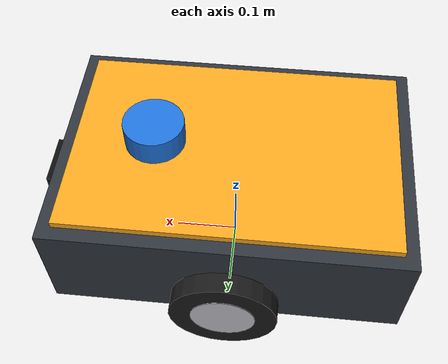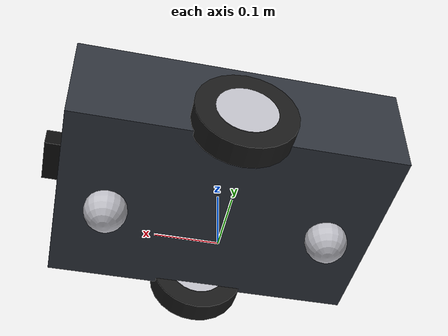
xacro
<?xml version="1.0"?>
<robot name="warehouse_robot" xmlns:xacro="http://www.ros.org/wiki/xacro">

  <!-- Materials -->
  <xacro:include filename="$(find warehouse_robot_description)/urdf/materials.xacro" />

  <!-- Geometric & Physical Constants -->
  <xacro:property name="chassis_length" value="0.52" />
  <xacro:property name="chassis_width"  value="0.36" />
  <xacro:property name="chassis_height" value="0.16" />
  <xacro:property name="chassis_mass"   value="12.0" />

  <xacro:property name="wheel_radius"   value="0.08" />
  <xacro:property name="wheel_width"    value="0.04" />
  <xacro:property name="wheel_track"    value="0.38" />
  <xacro:property name="wheel_mass"     value="1.2" />

  <xacro:property name="caster_radius"  value="0.035" />
  <xacro:property name="caster_mass"    value="0.5" />
  <xacro:property name="caster_offset"  value="0.18" />

  <!-- Standard Inertia Macros -->
  <xacro:macro name="box_inertia" params="m l w h">
    <inertial>
      <mass value="${m}"/>
      <inertia ixx="${(m/12.0) * (w*w + h*h)}" ixy="0.0" ixz="0.0"
               iyy="${(m/12.0) * (l*l + h*h)}" iyz="0.0"
               izz="${(m/12.0) * (l*l + w*w)}" />
    </inertial>
  </xacro:macro>

  <xacro:macro name="cylinder_inertia" params="m r h">
    <inertial>
      <mass value="${m}"/>
      <inertia ixx="${(m/12.0) * (3*r*r + h*h)}" ixy="0.0" ixz="0.0"
               iyy="${(m/12.0) * (3*r*r + h*h)}" iyz="0.0"
               izz="${(m/2.0) * (r*r)}" />
    </inertial>
  </xacro:macro>

  <xacro:macro name="sphere_inertia" params="m r">
    <inertial>
      <mass value="${m}"/>
      <inertia ixx="${(2.0/5.0) * m * r * r}" ixy="0.0" ixz="0.0"
               iyy="${(2.0/5.0) * m * r * r}" iyz="0.0"
               izz="${(2.0/5.0) * m * r * r}" />
    </inertial>
  </xacro:macro>

  <!-- Base Footprint (Ground projection) -->
  <link name="base_footprint"/>

  <joint name="base_footprint_joint" type="fixed">
    <parent link="base_footprint"/>
    <child link="base_link"/>
    <origin xyz="0 0 ${wheel_radius}" rpy="0 0 0"/>
  </joint>

  <!-- Base Link (Chassis) -->
  <link name="base_link">
    <!-- Main Chassis Body -->
    <visual>
      <origin xyz="0 0 0.05" rpy="0 0 0"/>
      <geometry>
        <box size="${chassis_length} ${chassis_width} ${chassis_height}"/>
      </geometry>
      <material name="chassis_grey"/>
    </visual>

    <!-- Top Deck / Cargo Platform (Yellow Accent) -->
    <visual>
      <origin xyz="0 0 ${0.05 + chassis_height/2 + 0.005}" rpy="0 0 0"/>
      <geometry>
        <box size="${chassis_length - 0.04} ${chassis_width - 0.04} 0.01"/>
      </geometry>
      <material name="warehouse_yellow"/>
    </visual>

    <collision>
      <origin xyz="0 0 0.05" rpy="0 0 0"/>
      <geometry>
        <box size="${chassis_length} ${chassis_width} ${chassis_height}"/>
      </geometry>
    </collision>

    <xacro:box_inertia m="${chassis_mass}" l="${chassis_length}" w="${chassis_width}" h="${chassis_height}"/>
  </link>

  <!-- Drive Wheels Macro -->
  <xacro:macro name="drive_wheel" params="prefix y_offset">
    <link name="${prefix}_wheel">
      <visual>
        <origin xyz="0 0 0" rpy="${pi/2} 0 0"/>
        <geometry>
          <cylinder radius="${wheel_radius}" length="${wheel_width}"/>
        </geometry>
        <material name="wheel_black"/>
      </visual>
      <visual>
        <origin xyz="0 0 0" rpy="${pi/2} 0 0"/>
        <geometry>
          <cylinder radius="${wheel_radius * 0.6}" length="${wheel_width + 0.002}"/>
        </geometry>
        <material name="silver_metallic"/>
      </visual>
      <collision>
        <origin xyz="0 0 0" rpy="${pi/2} 0 0"/>
        <geometry>
          <cylinder radius="${wheel_radius}" length="${wheel_width}"/>
        </geometry>
      </collision>
      <xacro:cylinder_inertia m="${wheel_mass}" r="${wheel_radius}" h="${wheel_width}"/>
    </link>

    <joint name="${prefix}_wheel_joint" type="continuous">
      <parent link="base_link"/>
      <child link="${prefix}_wheel"/>
      <origin xyz="0 ${y_offset} 0" rpy="0 0 0"/>
      <axis xyz="0 1 0"/>
    </joint>

    <gazebo reference="${prefix}_wheel">
      <mu1>1.2</mu1>
      <mu2>1.2</mu2>
      <kp>1000000.0</kp>
      <kd>100.0</kd>
      <minDepth>0.001</minDepth>
    </gazebo>
  </xacro:macro>

  <!-- Left & Right Wheels -->
  <xacro:drive_wheel prefix="left"  y_offset="${wheel_track/2}" />
  <xacro:drive_wheel prefix="right" y_offset="${-wheel_track/2}" />

  <!-- Casters Macro (Front & Rear Passive Ball Supports) -->
  <xacro:macro name="passive_caster" params="prefix x_offset">
    <link name="${prefix}_caster">
      <visual>
        <origin xyz="0 0 0" rpy="0 0 0"/>
        <geometry>
          <sphere radius="${caster_radius}"/>
        </geometry>
        <material name="silver_metallic"/>
      </visual>
      <collision>
        <origin xyz="0 0 0" rpy="0 0 0"/>
        <geometry>
          <sphere radius="${caster_radius}"/>
        </geometry>
      </collision>
      <xacro:sphere_inertia m="${caster_mass}" r="${caster_radius}"/>
    </link>

    <joint name="${prefix}_caster_joint" type="fixed">
      <parent link="base_link"/>
      <child link="${prefix}_caster"/>
      <origin xyz="${x_offset} 0 ${-(wheel_radius - caster_radius)}" rpy="0 0 0"/>
    </joint>

    <gazebo reference="${prefix}_caster">
      <mu1>0.001</mu1>
      <mu2>0.001</mu2>
    </gazebo>
  </xacro:macro>

  <!-- Front & Rear Casters -->
  <xacro:passive_caster prefix="front" x_offset="${caster_offset}" />
  <xacro:passive_caster prefix="rear"  x_offset="${-caster_offset}" />

  <!-- 2D LiDAR Sensor -->
  <link name="laser_link">
    <visual>
      <origin xyz="0 0 0" rpy="0 0 0"/>
      <geometry>
        <cylinder radius="0.045" length="0.04"/>
      </geometry>
      <material name="sensor_blue"/>
    </visual>
    <collision>
      <origin xyz="0 0 0" rpy="0 0 0"/>
      <geometry>
        <cylinder radius="0.045" length="0.04"/>
      </geometry>
    </collision>
    <xacro:cylinder_inertia m="0.2" r="0.045" h="0.04"/>
  </link>

  <joint name="laser_joint" type="fixed">
    <parent link="base_link"/>
    <child link="laser_link"/>
    <origin xyz="0.12 0.0 ${0.05 + chassis_height/2 + 0.03}" rpy="0 0 0"/>
  </joint>

  <!-- Front RGB Camera -->
  <link name="camera_link">
    <visual>
      <origin xyz="0 0 0" rpy="0 0 0"/>
      <geometry>
        <box size="0.03 0.08 0.03"/>
      </geometry>
      <material name="lens_glass"/>
    </visual>
    <collision>
      <origin xyz="0 0 0" rpy="0 0 0"/>
      <geometry>
        <box size="0.03 0.08 0.03"/>
      </geometry>
    </collision>
    <xacro:box_inertia m="0.1" l="0.03" w="0.08" h="0.03"/>
  </link>

  <joint name="camera_joint" type="fixed">
    <parent link="base_link"/>
    <child link="camera_link"/>
    <origin xyz="${chassis_length/2 + 0.015} 0.0 0.06" rpy="0 0 0"/>
  </joint>

  <!-- Optical Camera Frame -->
  <link name="camera_optical_link"/>
  <joint name="camera_optical_joint" type="fixed">
    <parent link="camera_link"/>
    <child link="camera_optical_link"/>
    <origin xyz="0 0 0" rpy="${-pi/2} 0 ${-pi/2}"/>
  </joint>

  <!-- ================= Gazebo Harmonic Plugins & Sensors ================= -->
  <gazebo>
    <!-- Differential Drive Controller Plugin -->
    <plugin filename="gz-sim-diff-drive-system" name="gz::sim::systems::DiffDrive">
      <left_joint>left_wheel_joint</left_joint>
      <right_joint>right_wheel_joint</right_joint>
      <wheel_separation>${wheel_track}</wheel_separation>
      <wheel_radius>${wheel_radius}</wheel_radius>
      <max_linear_acceleration>1.0</max_linear_acceleration>
      <min_linear_acceleration>-1.0</min_linear_acceleration>
      <max_angular_acceleration>2.0</max_angular_acceleration>
      <min_angular_acceleration>-2.0</min_angular_acceleration>
      <max_linear_velocity>1.2</max_linear_velocity>
      <min_linear_velocity>-0.8</min_linear_velocity>
      <max_angular_velocity>2.5</max_angular_velocity>
      <min_angular_velocity>-2.5</min_angular_velocity>
      <topic>/cmd_vel</topic>
      <odom_topic>/odom</odom_topic>
      <tf_topic>/tf</tf_topic>
      <frame_id>odom</frame_id>
      <child_frame_id>base_footprint</child_frame_id>
      <odom_publish_frequency>30</odom_publish_frequency>
    </plugin>

    <!-- Joint State Publisher Plugin -->
    <plugin filename="gz-sim-joint-state-publisher-system" name="gz::sim::systems::JointStatePublisher">
      <topic>/joint_states</topic>
      <joint_name>left_wheel_joint</joint_name>
      <joint_name>right_wheel_joint</joint_name>
    </plugin>
  </gazebo>

  <!-- 2D LiDAR Gazebo Sensor -->
  <gazebo reference="laser_link">
    <sensor name="lidar" type="gpu_lidar">
      <always_on>true</always_on>
      <visualize>true</visualize>
      <update_rate>10</update_rate>
      <topic>/scan</topic>
      <gz_frame_id>laser_link</gz_frame_id>
      <ray>
        <scan>
          <horizontal>
            <samples>360</samples>
            <resolution>1</resolution>
            <min_angle>-3.14159265</min_angle>
            <max_angle>3.14159265</max_angle>
          </horizontal>
        </scan>
        <range>
          <min>0.15</min>
          <max>12.0</max>
          <resolution>0.01</resolution>
        </range>
        <noise>
          <type>gaussian</type>
          <mean>0.0</mean>
          <stddev>0.01</stddev>
        </noise>
      </ray>
    </sensor>
  </gazebo>

  <!-- RGB Camera Gazebo Sensor -->
  <gazebo reference="camera_link">
    <sensor name="camera" type="camera">
      <always_on>true</always_on>
      <visualize>true</visualize>
      <update_rate>20</update_rate>
      <topic>/camera/image_raw</topic>
      <gz_frame_id>camera_optical_link</gz_frame_id>
      <camera>
        <horizontal_fov>1.15</horizontal_fov>
        <image>
          <width>640</width>
          <height>480</height>
          <format>R8G8B8</format>
        </image>
        <clip>
          <near>0.05</near>
          <far>15.0</far>
        </clip>
        <noise>
          <type>gaussian</type>
          <mean>0.0</mean>
          <stddev>0.005</stddev>
        </noise>
      </camera>
    </sensor>
  </gazebo>

</robot>

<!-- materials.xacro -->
<robot xmlns:xacro="http://www.ros.org/wiki/xacro">

  <material name="chassis_grey">
    <color rgba="0.18 0.20 0.23 1.0"/>
  </material>

  <material name="warehouse_yellow">
    <color rgba="0.96 0.65 0.12 1.0"/>
  </material>

  <material name="wheel_black">
    <color rgba="0.10 0.10 0.10 1.0"/>
  </material>

  <material name="sensor_blue">
    <color rgba="0.12 0.45 0.85 1.0"/>
  </material>

  <material name="lens_glass">
    <color rgba="0.05 0.05 0.05 1.0"/>
  </material>

  <material name="silver_metallic">
    <color rgba="0.75 0.75 0.78 1.0"/>
  </material>

</robot>
